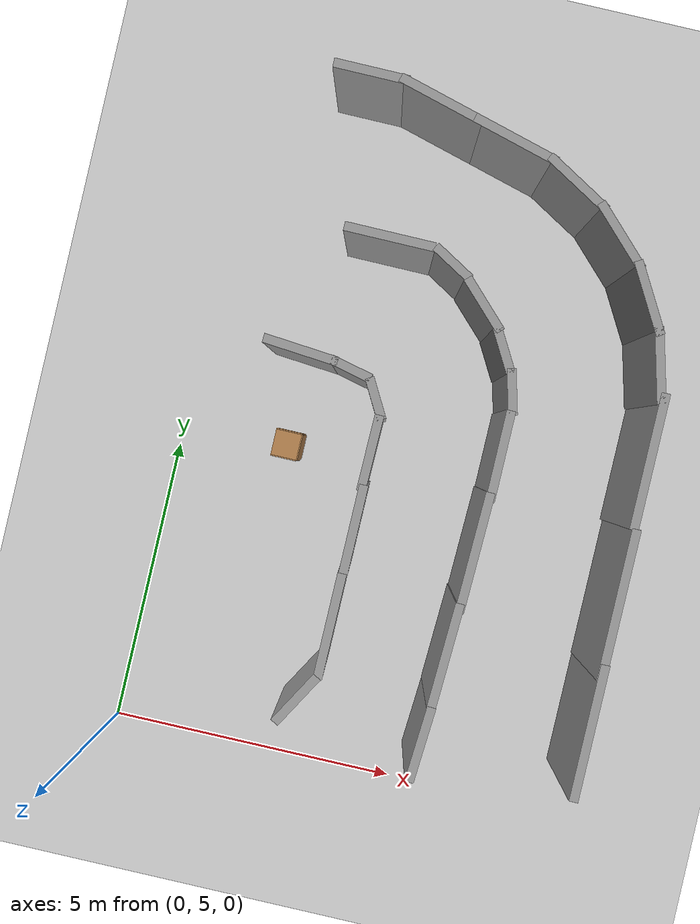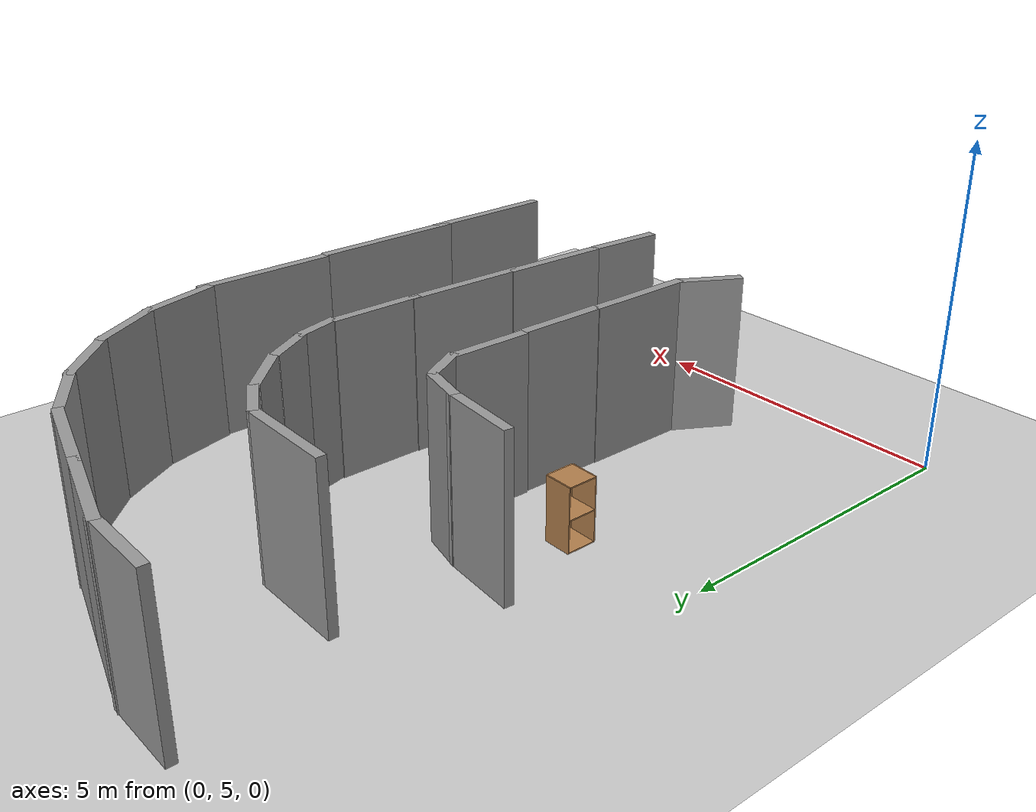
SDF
<sdf version="1.6">
 <world name="default">
  <model name="ground_plane">
   <static>1</static>
   <link name="link">
    <collision name="collision">
     <geometry><plane><normal>0 0 1</normal><size>100 100</size></plane></geometry>
     <surface><friction><ode><mu>100</mu><mu2>50</mu2></ode></friction></surface>
    </collision>
    <visual name="visual">
     <cast_shadows>0</cast_shadows>
     <geometry><plane><normal>0 0 1</normal><size>100 100</size></plane></geometry>
     <material>
      <script><uri>file://media/materials/scripts/gazebo.material</uri><name>Gazebo/Grey</name></script>
     </material>
    </visual>
   </link>
  </model>
  <model name="c-Snail_v3">
   <link name="Wall_19">
    <pose>0.800174 -5.81597 0 0 -0 0</pose>
    <visual name="Wall_19_Visual">
     <pose>0 0 1.25 0 -0 0</pose>
     <geometry><box><size>2.25 0.15 2.5</size></box></geometry>
     <material>
      <script><uri>file://media/materials/scripts/gazebo.material</uri><name>Gazebo/Grey</name></script>
      <ambient>1 1 1 1</ambient>
     </material>
     <meta><layer>0</layer></meta>
    </visual>
    <collision name="Wall_19_Collision">
     <pose>0 0 1.25 0 -0 0</pose>
     <geometry><box><size>2.25 0.15 2.5</size></box></geometry>
     <surface>
      <friction>
       <ode><mu>1</mu><mu2>1</mu2><fdir1>0 0 0</fdir1><slip1>0</slip1><slip2>0</slip2></ode>
       <torsional>
        <coefficient>1</coefficient>
        <patch_radius>0</patch_radius>
        <surface_radius>0</surface_radius>
        <use_patch_radius>1</use_patch_radius>
        <ode><slip>0</slip></ode>
       </torsional>
      </friction>
      <bounce><restitution_coefficient>0</restitution_coefficient><threshold>1e+06</threshold></bounce>
      <contact>
       <collide_without_contact>0</collide_without_contact>
       <collide_without_contact_bitmask>1</collide_without_contact_bitmask>
       <collide_bitmask>1</collide_bitmask>
       <ode>
        <soft_cfm>0</soft_cfm>
        <soft_erp>0.2</soft_erp>
        <kp>1e+13</kp>
        <kd>1</kd>
        <max_vel>0.01</max_vel>
        <min_depth>0</min_depth>
       </ode>
       <bullet>
        <split_impulse>1</split_impulse>
        <split_impulse_penetration_threshold>-0.01</split_impulse_penetration_threshold>
        <soft_cfm>0</soft_cfm>
        <soft_erp>0.2</soft_erp>
        <kp>1e+13</kp>
        <kd>1</kd>
       </bullet>
      </contact>
     </surface>
    </collision>
   </link>
   <link name="Wall_20">
    <pose>2.90214 -5.80096 0 0 -0 0</pose>
    <visual name="Wall_20_Visual">
     <pose>0 0 1.25 0 -0 0</pose>
     <geometry><box><size>2.5 0.15 2.5</size></box></geometry>
     <material>
      <script><uri>file://media/materials/scripts/gazebo.material</uri><name>Gazebo/Grey</name></script>
      <ambient>1 1 1 1</ambient>
     </material>
     <meta><layer>0</layer></meta>
    </visual>
    <collision name="Wall_20_Collision">
     <pose>0 0 1.25 0 -0 0</pose>
     <geometry><box><size>2.5 0.15 2.5</size></box></geometry>
     <surface>
      <friction>
       <ode><mu>1</mu><mu2>1</mu2><fdir1>0 0 0</fdir1><slip1>0</slip1><slip2>0</slip2></ode>
       <torsional>
        <coefficient>1</coefficient>
        <patch_radius>0</patch_radius>
        <surface_radius>0</surface_radius>
        <use_patch_radius>1</use_patch_radius>
        <ode><slip>0</slip></ode>
       </torsional>
      </friction>
      <bounce><restitution_coefficient>0</restitution_coefficient><threshold>1e+06</threshold></bounce>
      <contact>
       <collide_without_contact>0</collide_without_contact>
       <collide_without_contact_bitmask>1</collide_without_contact_bitmask>
       <collide_bitmask>1</collide_bitmask>
       <ode>
        <soft_cfm>0</soft_cfm>
        <soft_erp>0.2</soft_erp>
        <kp>1e+13</kp>
        <kd>1</kd>
        <max_vel>0.01</max_vel>
        <min_depth>0</min_depth>
       </ode>
       <bullet>
        <split_impulse>1</split_impulse>
        <split_impulse_penetration_threshold>-0.01</split_impulse_penetration_threshold>
        <soft_cfm>0</soft_cfm>
        <soft_erp>0.2</soft_erp>
        <kp>1e+13</kp>
        <kd>1</kd>
       </bullet>
      </contact>
     </surface>
    </collision>
   </link>
   <link name="Wall_21">
    <pose>5.25228 -5.75509 0 0 -0 0</pose>
    <visual name="Wall_21_Visual">
     <pose>0 0 1.25 0 -0 0</pose>
     <geometry><box><size>2.25 0.15 2.5</size></box></geometry>
     <material>
      <script><uri>file://media/materials/scripts/gazebo.material</uri><name>Gazebo/Grey</name></script>
      <ambient>1 1 1 1</ambient>
     </material>
     <meta><layer>0</layer></meta>
    </visual>
    <collision name="Wall_21_Collision">
     <pose>0 0 1.25 0 -0 0</pose>
     <geometry><box><size>2.25 0.15 2.5</size></box></geometry>
     <surface>
      <friction>
       <ode><mu>1</mu><mu2>1</mu2><fdir1>0 0 0</fdir1><slip1>0</slip1><slip2>0</slip2></ode>
       <torsional>
        <coefficient>1</coefficient>
        <patch_radius>0</patch_radius>
        <surface_radius>0</surface_radius>
        <use_patch_radius>1</use_patch_radius>
        <ode><slip>0</slip></ode>
       </torsional>
      </friction>
      <bounce><restitution_coefficient>0</restitution_coefficient><threshold>1e+06</threshold></bounce>
      <contact>
       <collide_without_contact>0</collide_without_contact>
       <collide_without_contact_bitmask>1</collide_without_contact_bitmask>
       <collide_bitmask>1</collide_bitmask>
       <ode>
        <soft_cfm>0</soft_cfm>
        <soft_erp>0.2</soft_erp>
        <kp>1e+13</kp>
        <kd>1</kd>
        <max_vel>0.01</max_vel>
        <min_depth>0</min_depth>
       </ode>
       <bullet>
        <split_impulse>1</split_impulse>
        <split_impulse_penetration_threshold>-0.01</split_impulse_penetration_threshold>
        <soft_cfm>0</soft_cfm>
        <soft_erp>0.2</soft_erp>
        <kp>1e+13</kp>
        <kd>1</kd>
       </bullet>
      </contact>
     </surface>
    </collision>
   </link>
   <link name="Wall_22">
    <pose>6.78859 -5.56286 0 0 -0 0.261799</pose>
    <visual name="Wall_22_Visual">
     <pose>0 0 1.25 0 -0 0</pose>
     <geometry><box><size>1.25 0.15 2.5</size></box></geometry>
     <material>
      <script><uri>file://media/materials/scripts/gazebo.material</uri><name>Gazebo/Grey</name></script>
      <ambient>1 1 1 1</ambient>
     </material>
     <meta><layer>0</layer></meta>
    </visual>
    <collision name="Wall_22_Collision">
     <pose>0 0 1.25 0 -0 0</pose>
     <geometry><box><size>1.25 0.15 2.5</size></box></geometry>
     <surface>
      <friction>
       <ode><mu>1</mu><mu2>1</mu2><fdir1>0 0 0</fdir1><slip1>0</slip1><slip2>0</slip2></ode>
       <torsional>
        <coefficient>1</coefficient>
        <patch_radius>0</patch_radius>
        <surface_radius>0</surface_radius>
        <use_patch_radius>1</use_patch_radius>
        <ode><slip>0</slip></ode>
       </torsional>
      </friction>
      <bounce><restitution_coefficient>0</restitution_coefficient><threshold>1e+06</threshold></bounce>
      <contact>
       <collide_without_contact>0</collide_without_contact>
       <collide_without_contact_bitmask>1</collide_without_contact_bitmask>
       <collide_bitmask>1</collide_bitmask>
       <ode>
        <soft_cfm>0</soft_cfm>
        <soft_erp>0.2</soft_erp>
        <kp>1e+13</kp>
        <kd>1</kd>
        <max_vel>0.01</max_vel>
        <min_depth>0</min_depth>
       </ode>
       <bullet>
        <split_impulse>1</split_impulse>
        <split_impulse_penetration_threshold>-0.01</split_impulse_penetration_threshold>
        <soft_cfm>0</soft_cfm>
        <soft_erp>0.2</soft_erp>
        <kp>1e+13</kp>
        <kd>1</kd>
       </bullet>
      </contact>
     </surface>
    </collision>
   </link>
   <link name="Wall_23">
    <pose>7.79617 -5.14551 0 0 -0 0.523599</pose>
    <visual name="Wall_23_Visual">
     <pose>0 0 1.25 0 -0 0</pose>
     <geometry><box><size>1.25 0.15 2.5</size></box></geometry>
     <material>
      <script><uri>file://media/materials/scripts/gazebo.material</uri><name>Gazebo/Grey</name></script>
      <ambient>1 1 1 1</ambient>
     </material>
     <meta><layer>0</layer></meta>
    </visual>
    <collision name="Wall_23_Collision">
     <pose>0 0 1.25 0 -0 0</pose>
     <geometry><box><size>1.25 0.15 2.5</size></box></geometry>
     <surface>
      <friction>
       <ode><mu>1</mu><mu2>1</mu2><fdir1>0 0 0</fdir1><slip1>0</slip1><slip2>0</slip2></ode>
       <torsional>
        <coefficient>1</coefficient>
        <patch_radius>0</patch_radius>
        <surface_radius>0</surface_radius>
        <use_patch_radius>1</use_patch_radius>
        <ode><slip>0</slip></ode>
       </torsional>
      </friction>
      <bounce><restitution_coefficient>0</restitution_coefficient><threshold>1e+06</threshold></bounce>
      <contact>
       <collide_without_contact>0</collide_without_contact>
       <collide_without_contact_bitmask>1</collide_without_contact_bitmask>
       <collide_bitmask>1</collide_bitmask>
       <ode>
        <soft_cfm>0</soft_cfm>
        <soft_erp>0.2</soft_erp>
        <kp>1e+13</kp>
        <kd>1</kd>
        <max_vel>0.01</max_vel>
        <min_depth>0</min_depth>
       </ode>
       <bullet>
        <split_impulse>1</split_impulse>
        <split_impulse_penetration_threshold>-0.01</split_impulse_penetration_threshold>
        <soft_cfm>0</soft_cfm>
        <soft_erp>0.2</soft_erp>
        <kp>1e+13</kp>
        <kd>1</kd>
       </bullet>
      </contact>
     </surface>
    </collision>
   </link>
   <link name="Wall_24">
    <pose>8.66139 -4.4816 0 0 -0 0.785398</pose>
    <visual name="Wall_24_Visual">
     <pose>0 0 1.25 0 -0 0</pose>
     <geometry><box><size>1.25 0.15 2.5</size></box></geometry>
     <material>
      <script><uri>file://media/materials/scripts/gazebo.material</uri><name>Gazebo/Grey</name></script>
      <ambient>1 1 1 1</ambient>
     </material>
     <meta><layer>0</layer></meta>
    </visual>
    <collision name="Wall_24_Collision">
     <pose>0 0 1.25 0 -0 0</pose>
     <geometry><box><size>1.25 0.15 2.5</size></box></geometry>
     <surface>
      <friction>
       <ode><mu>1</mu><mu2>1</mu2><fdir1>0 0 0</fdir1><slip1>0</slip1><slip2>0</slip2></ode>
       <torsional>
        <coefficient>1</coefficient>
        <patch_radius>0</patch_radius>
        <surface_radius>0</surface_radius>
        <use_patch_radius>1</use_patch_radius>
        <ode><slip>0</slip></ode>
       </torsional>
      </friction>
      <bounce><restitution_coefficient>0</restitution_coefficient><threshold>1e+06</threshold></bounce>
      <contact>
       <collide_without_contact>0</collide_without_contact>
       <collide_without_contact_bitmask>1</collide_without_contact_bitmask>
       <collide_bitmask>1</collide_bitmask>
       <ode>
        <soft_cfm>0</soft_cfm>
        <soft_erp>0.2</soft_erp>
        <kp>1e+13</kp>
        <kd>1</kd>
        <max_vel>0.01</max_vel>
        <min_depth>0</min_depth>
       </ode>
       <bullet>
        <split_impulse>1</split_impulse>
        <split_impulse_penetration_threshold>-0.01</split_impulse_penetration_threshold>
        <soft_cfm>0</soft_cfm>
        <soft_erp>0.2</soft_erp>
        <kp>1e+13</kp>
        <kd>1</kd>
       </bullet>
      </contact>
     </surface>
    </collision>
   </link>
   <link name="Wall_25">
    <pose>9.3253 -3.61638 0 0 -0 1.0472</pose>
    <visual name="Wall_25_Visual">
     <pose>0 0 1.25 0 -0 0</pose>
     <geometry><box><size>1.25 0.15 2.5</size></box></geometry>
     <material>
      <script><uri>file://media/materials/scripts/gazebo.material</uri><name>Gazebo/Grey</name></script>
      <ambient>1 1 1 1</ambient>
     </material>
     <meta><layer>0</layer></meta>
    </visual>
    <collision name="Wall_25_Collision">
     <pose>0 0 1.25 0 -0 0</pose>
     <geometry><box><size>1.25 0.15 2.5</size></box></geometry>
     <surface>
      <friction>
       <ode><mu>1</mu><mu2>1</mu2><fdir1>0 0 0</fdir1><slip1>0</slip1><slip2>0</slip2></ode>
       <torsional>
        <coefficient>1</coefficient>
        <patch_radius>0</patch_radius>
        <surface_radius>0</surface_radius>
        <use_patch_radius>1</use_patch_radius>
        <ode><slip>0</slip></ode>
       </torsional>
      </friction>
      <bounce><restitution_coefficient>0</restitution_coefficient><threshold>1e+06</threshold></bounce>
      <contact>
       <collide_without_contact>0</collide_without_contact>
       <collide_without_contact_bitmask>1</collide_without_contact_bitmask>
       <collide_bitmask>1</collide_bitmask>
       <ode>
        <soft_cfm>0</soft_cfm>
        <soft_erp>0.2</soft_erp>
        <kp>1e+13</kp>
        <kd>1</kd>
        <max_vel>0.01</max_vel>
        <min_depth>0</min_depth>
       </ode>
       <bullet>
        <split_impulse>1</split_impulse>
        <split_impulse_penetration_threshold>-0.01</split_impulse_penetration_threshold>
        <soft_cfm>0</soft_cfm>
        <soft_erp>0.2</soft_erp>
        <kp>1e+13</kp>
        <kd>1</kd>
       </bullet>
      </contact>
     </surface>
    </collision>
   </link>
   <link name="Wall_26">
    <pose>9.775 -2.48806 0 0 -0 1.309</pose>
    <visual name="Wall_26_Visual">
     <pose>0 0 1.25 0 -0 0</pose>
     <geometry><box><size>1.5 0.15 2.5</size></box></geometry>
     <material>
      <script><uri>file://media/materials/scripts/gazebo.material</uri><name>Gazebo/Grey</name></script>
      <ambient>1 1 1 1</ambient>
     </material>
     <meta><layer>0</layer></meta>
    </visual>
    <collision name="Wall_26_Collision">
     <pose>0 0 1.25 0 -0 0</pose>
     <geometry><box><size>1.5 0.15 2.5</size></box></geometry>
     <surface>
      <friction>
       <ode><mu>1</mu><mu2>1</mu2><fdir1>0 0 0</fdir1><slip1>0</slip1><slip2>0</slip2></ode>
       <torsional>
        <coefficient>1</coefficient>
        <patch_radius>0</patch_radius>
        <surface_radius>0</surface_radius>
        <use_patch_radius>1</use_patch_radius>
        <ode><slip>0</slip></ode>
       </torsional>
      </friction>
      <bounce><restitution_coefficient>0</restitution_coefficient><threshold>1e+06</threshold></bounce>
      <contact>
       <collide_without_contact>0</collide_without_contact>
       <collide_without_contact_bitmask>1</collide_without_contact_bitmask>
       <collide_bitmask>1</collide_bitmask>
       <ode>
        <soft_cfm>0</soft_cfm>
        <soft_erp>0.2</soft_erp>
        <kp>1e+13</kp>
        <kd>1</kd>
        <max_vel>0.01</max_vel>
        <min_depth>0</min_depth>
       </ode>
       <bullet>
        <split_impulse>1</split_impulse>
        <split_impulse_penetration_threshold>-0.01</split_impulse_penetration_threshold>
        <soft_cfm>0</soft_cfm>
        <soft_erp>0.2</soft_erp>
        <kp>1e+13</kp>
        <kd>1</kd>
       </bullet>
      </contact>
     </surface>
    </collision>
   </link>
   <link name="Wall_27">
    <pose>10.1244 -1.18406 0 0 -0 1.309</pose>
    <visual name="Wall_27_Visual">
     <pose>0 0 1.25 0 -0 0</pose>
     <geometry><box><size>1.5 0.15 2.5</size></box></geometry>
     <material>
      <script><uri>file://media/materials/scripts/gazebo.material</uri><name>Gazebo/Grey</name></script>
      <ambient>1 1 1 1</ambient>
     </material>
     <meta><layer>0</layer></meta>
    </visual>
    <collision name="Wall_27_Collision">
     <pose>0 0 1.25 0 -0 0</pose>
     <geometry><box><size>1.5 0.15 2.5</size></box></geometry>
     <surface>
      <friction>
       <ode><mu>1</mu><mu2>1</mu2><fdir1>0 0 0</fdir1><slip1>0</slip1><slip2>0</slip2></ode>
       <torsional>
        <coefficient>1</coefficient>
        <patch_radius>0</patch_radius>
        <surface_radius>0</surface_radius>
        <use_patch_radius>1</use_patch_radius>
        <ode><slip>0</slip></ode>
       </torsional>
      </friction>
      <bounce><restitution_coefficient>0</restitution_coefficient><threshold>1e+06</threshold></bounce>
      <contact>
       <collide_without_contact>0</collide_without_contact>
       <collide_without_contact_bitmask>1</collide_without_contact_bitmask>
       <collide_bitmask>1</collide_bitmask>
       <ode>
        <soft_cfm>0</soft_cfm>
        <soft_erp>0.2</soft_erp>
        <kp>1e+13</kp>
        <kd>1</kd>
        <max_vel>0.01</max_vel>
        <min_depth>0</min_depth>
       </ode>
       <bullet>
        <split_impulse>1</split_impulse>
        <split_impulse_penetration_threshold>-0.01</split_impulse_penetration_threshold>
        <soft_cfm>0</soft_cfm>
        <soft_erp>0.2</soft_erp>
        <kp>1e+13</kp>
        <kd>1</kd>
       </bullet>
      </contact>
     </surface>
    </collision>
   </link>
   <link name="Wall_28">
    <pose>10.2991 0.017937 0 0 -0 1.5708</pose>
    <visual name="Wall_28_Visual">
     <pose>0 0 1.25 0 -0 0</pose>
     <geometry><box><size>1.25 0.15 2.5</size></box></geometry>
     <material>
      <script><uri>file://media/materials/scripts/gazebo.material</uri><name>Gazebo/Grey</name></script>
      <ambient>1 1 1 1</ambient>
     </material>
     <meta><layer>0</layer></meta>
    </visual>
    <collision name="Wall_28_Collision">
     <pose>0 0 1.25 0 -0 0</pose>
     <geometry><box><size>1.25 0.15 2.5</size></box></geometry>
     <surface>
      <friction>
       <ode><mu>1</mu><mu2>1</mu2><fdir1>0 0 0</fdir1><slip1>0</slip1><slip2>0</slip2></ode>
       <torsional>
        <coefficient>1</coefficient>
        <patch_radius>0</patch_radius>
        <surface_radius>0</surface_radius>
        <use_patch_radius>1</use_patch_radius>
        <ode><slip>0</slip></ode>
       </torsional>
      </friction>
      <bounce><restitution_coefficient>0</restitution_coefficient><threshold>1e+06</threshold></bounce>
      <contact>
       <collide_without_contact>0</collide_without_contact>
       <collide_without_contact_bitmask>1</collide_without_contact_bitmask>
       <collide_bitmask>1</collide_bitmask>
       <ode>
        <soft_cfm>0</soft_cfm>
        <soft_erp>0.2</soft_erp>
        <kp>1e+13</kp>
        <kd>1</kd>
        <max_vel>0.01</max_vel>
        <min_depth>0</min_depth>
       </ode>
       <bullet>
        <split_impulse>1</split_impulse>
        <split_impulse_penetration_threshold>-0.01</split_impulse_penetration_threshold>
        <soft_cfm>0</soft_cfm>
        <soft_erp>0.2</soft_erp>
        <kp>1e+13</kp>
        <kd>1</kd>
       </bullet>
      </contact>
     </surface>
    </collision>
   </link>
   <link name="Wall_46">
    <pose>0.001242 -3.22352 -0 0 0 -0.065231</pose>
    <visual name="Wall_46_Visual">
     <pose>0 0 1.25 0 -0 0</pose>
     <geometry><box><size>1.25 0.15 2.5</size></box></geometry>
     <material>
      <script><uri>file://media/materials/scripts/gazebo.material</uri><name>Gazebo/Grey</name></script>
      <ambient>1 1 1 1</ambient>
     </material>
     <meta><layer>0</layer></meta>
    </visual>
    <collision name="Wall_46_Collision">
     <pose>0 0 1.25 0 -0 0</pose>
     <geometry><box><size>1.25 0.15 2.5</size></box></geometry>
     <surface>
      <friction>
       <ode><mu>1</mu><mu2>1</mu2><fdir1>0 0 0</fdir1><slip1>0</slip1><slip2>0</slip2></ode>
       <torsional>
        <coefficient>1</coefficient>
        <patch_radius>0</patch_radius>
        <surface_radius>0</surface_radius>
        <use_patch_radius>1</use_patch_radius>
        <ode><slip>0</slip></ode>
       </torsional>
      </friction>
      <bounce><restitution_coefficient>0</restitution_coefficient><threshold>1e+06</threshold></bounce>
      <contact>
       <collide_without_contact>0</collide_without_contact>
       <collide_without_contact_bitmask>1</collide_without_contact_bitmask>
       <collide_bitmask>1</collide_bitmask>
       <ode>
        <soft_cfm>0</soft_cfm>
        <soft_erp>0.2</soft_erp>
        <kp>1e+13</kp>
        <kd>1</kd>
        <max_vel>0.01</max_vel>
        <min_depth>0</min_depth>
       </ode>
       <bullet>
        <split_impulse>1</split_impulse>
        <split_impulse_penetration_threshold>-0.01</split_impulse_penetration_threshold>
        <soft_cfm>0</soft_cfm>
        <soft_erp>0.2</soft_erp>
        <kp>1e+13</kp>
        <kd>1</kd>
       </bullet>
      </contact>
     </surface>
    </collision>
   </link>
   <link name="Wall_47">
    <pose>1.4692 -3.29142 0 0 0 -0.040966</pose>
    <visual name="Wall_47_Visual">
     <pose>0 0 1.25 0 -0 0</pose>
     <geometry><box><size>1.75 0.15 2.5</size></box></geometry>
     <material>
      <script><uri>file://media/materials/scripts/gazebo.material</uri><name>Gazebo/Grey</name></script>
      <ambient>1 1 1 1</ambient>
     </material>
     <meta><layer>0</layer></meta>
    </visual>
    <collision name="Wall_47_Collision">
     <pose>0 0 1.25 0 -0 0</pose>
     <geometry><box><size>1.75 0.15 2.5</size></box></geometry>
     <surface>
      <friction>
       <ode><mu>1</mu><mu2>1</mu2><fdir1>0 0 0</fdir1><slip1>0</slip1><slip2>0</slip2></ode>
       <torsional>
        <coefficient>1</coefficient>
        <patch_radius>0</patch_radius>
        <surface_radius>0</surface_radius>
        <use_patch_radius>1</use_patch_radius>
        <ode><slip>0</slip></ode>
       </torsional>
      </friction>
      <bounce><restitution_coefficient>0</restitution_coefficient><threshold>1e+06</threshold></bounce>
      <contact>
       <collide_without_contact>0</collide_without_contact>
       <collide_without_contact_bitmask>1</collide_without_contact_bitmask>
       <collide_bitmask>1</collide_bitmask>
       <ode>
        <soft_cfm>0</soft_cfm>
        <soft_erp>0.2</soft_erp>
        <kp>1e+13</kp>
        <kd>1</kd>
        <max_vel>0.01</max_vel>
        <min_depth>0</min_depth>
       </ode>
       <bullet>
        <split_impulse>1</split_impulse>
        <split_impulse_penetration_threshold>-0.01</split_impulse_penetration_threshold>
        <soft_cfm>0</soft_cfm>
        <soft_erp>0.2</soft_erp>
        <kp>1e+13</kp>
        <kd>1</kd>
       </bullet>
      </contact>
     </surface>
    </collision>
   </link>
   <link name="Wall_48">
    <pose>3.18497 -3.36606 0 0 0 -0.02609</pose>
    <visual name="Wall_48_Visual">
     <pose>0 0 1.25 0 -0 0</pose>
     <geometry><box><size>2 0.15 2.5</size></box></geometry>
     <material>
      <script><uri>file://media/materials/scripts/gazebo.material</uri><name>Gazebo/Grey</name></script>
      <ambient>1 1 1 1</ambient>
     </material>
     <meta><layer>0</layer></meta>
    </visual>
    <collision name="Wall_48_Collision">
     <pose>0 0 1.25 0 -0 0</pose>
     <geometry><box><size>2 0.15 2.5</size></box></geometry>
     <surface>
      <friction>
       <ode><mu>1</mu><mu2>1</mu2><fdir1>0 0 0</fdir1><slip1>0</slip1><slip2>0</slip2></ode>
       <torsional>
        <coefficient>1</coefficient>
        <patch_radius>0</patch_radius>
        <surface_radius>0</surface_radius>
        <use_patch_radius>1</use_patch_radius>
        <ode><slip>0</slip></ode>
       </torsional>
      </friction>
      <bounce><restitution_coefficient>0</restitution_coefficient><threshold>1e+06</threshold></bounce>
      <contact>
       <collide_without_contact>0</collide_without_contact>
       <collide_without_contact_bitmask>1</collide_without_contact_bitmask>
       <collide_bitmask>1</collide_bitmask>
       <ode>
        <soft_cfm>0</soft_cfm>
        <soft_erp>0.2</soft_erp>
        <kp>1e+13</kp>
        <kd>1</kd>
        <max_vel>0.01</max_vel>
        <min_depth>0</min_depth>
       </ode>
       <bullet>
        <split_impulse>1</split_impulse>
        <split_impulse_penetration_threshold>-0.01</split_impulse_penetration_threshold>
        <soft_cfm>0</soft_cfm>
        <soft_erp>0.2</soft_erp>
        <kp>1e+13</kp>
        <kd>1</kd>
       </bullet>
      </contact>
     </surface>
    </collision>
   </link>
   <link name="Wall_49">
    <pose>4.78497 -3.4097 0 0 -0 0</pose>
    <visual name="Wall_49_Visual">
     <pose>0 0 1.25 0 -0 0</pose>
     <geometry><box><size>1.5 0.15 2.5</size></box></geometry>
     <material>
      <script><uri>file://media/materials/scripts/gazebo.material</uri><name>Gazebo/Grey</name></script>
      <ambient>1 1 1 1</ambient>
     </material>
     <meta><layer>0</layer></meta>
    </visual>
    <collision name="Wall_49_Collision">
     <pose>0 0 1.25 0 -0 0</pose>
     <geometry><box><size>1.5 0.15 2.5</size></box></geometry>
     <surface>
      <friction>
       <ode><mu>1</mu><mu2>1</mu2><fdir1>0 0 0</fdir1><slip1>0</slip1><slip2>0</slip2></ode>
       <torsional>
        <coefficient>1</coefficient>
        <patch_radius>0</patch_radius>
        <surface_radius>0</surface_radius>
        <use_patch_radius>1</use_patch_radius>
        <ode><slip>0</slip></ode>
       </torsional>
      </friction>
      <bounce><restitution_coefficient>0</restitution_coefficient><threshold>1e+06</threshold></bounce>
      <contact>
       <collide_without_contact>0</collide_without_contact>
       <collide_without_contact_bitmask>1</collide_without_contact_bitmask>
       <collide_bitmask>1</collide_bitmask>
       <ode>
        <soft_cfm>0</soft_cfm>
        <soft_erp>0.2</soft_erp>
        <kp>1e+13</kp>
        <kd>1</kd>
        <max_vel>0.01</max_vel>
        <min_depth>0</min_depth>
       </ode>
       <bullet>
        <split_impulse>1</split_impulse>
        <split_impulse_penetration_threshold>-0.01</split_impulse_penetration_threshold>
        <soft_cfm>0</soft_cfm>
        <soft_erp>0.2</soft_erp>
        <kp>1e+13</kp>
        <kd>1</kd>
       </bullet>
      </contact>
     </surface>
    </collision>
   </link>
   <link name="Wall_50">
    <pose>5.83118 -3.35199 0 0 -0 0.261799</pose>
    <visual name="Wall_50_Visual">
     <pose>0 0 1.25 0 -0 0</pose>
     <geometry><box><size>0.75 0.15 2.5</size></box></geometry>
     <material>
      <script><uri>file://media/materials/scripts/gazebo.material</uri><name>Gazebo/Grey</name></script>
      <ambient>1 1 1 1</ambient>
     </material>
     <meta><layer>0</layer></meta>
    </visual>
    <collision name="Wall_50_Collision">
     <pose>0 0 1.25 0 -0 0</pose>
     <geometry><box><size>0.75 0.15 2.5</size></box></geometry>
     <surface>
      <friction>
       <ode><mu>1</mu><mu2>1</mu2><fdir1>0 0 0</fdir1><slip1>0</slip1><slip2>0</slip2></ode>
       <torsional>
        <coefficient>1</coefficient>
        <patch_radius>0</patch_radius>
        <surface_radius>0</surface_radius>
        <use_patch_radius>1</use_patch_radius>
        <ode><slip>0</slip></ode>
       </torsional>
      </friction>
      <bounce><restitution_coefficient>0</restitution_coefficient><threshold>1e+06</threshold></bounce>
      <contact>
       <collide_without_contact>0</collide_without_contact>
       <collide_without_contact_bitmask>1</collide_without_contact_bitmask>
       <collide_bitmask>1</collide_bitmask>
       <ode>
        <soft_cfm>0</soft_cfm>
        <soft_erp>0.2</soft_erp>
        <kp>1e+13</kp>
        <kd>1</kd>
        <max_vel>0.01</max_vel>
        <min_depth>0</min_depth>
       </ode>
       <bullet>
        <split_impulse>1</split_impulse>
        <split_impulse_penetration_threshold>-0.01</split_impulse_penetration_threshold>
        <soft_cfm>0</soft_cfm>
        <soft_erp>0.2</soft_erp>
        <kp>1e+13</kp>
        <kd>1</kd>
       </bullet>
      </contact>
     </surface>
    </collision>
   </link>
   <link name="Wall_51">
    <pose>6.44534 -3.07335 0 0 -0 0.523599</pose>
    <visual name="Wall_51_Visual">
     <pose>0 0 1.25 0 -0 0</pose>
     <geometry><box><size>0.75 0.15 2.5</size></box></geometry>
     <material>
      <script><uri>file://media/materials/scripts/gazebo.material</uri><name>Gazebo/Grey</name></script>
      <ambient>1 1 1 1</ambient>
     </material>
     <meta><layer>0</layer></meta>
    </visual>
    <collision name="Wall_51_Collision">
     <pose>0 0 1.25 0 -0 0</pose>
     <geometry><box><size>0.75 0.15 2.5</size></box></geometry>
     <surface>
      <friction>
       <ode><mu>1</mu><mu2>1</mu2><fdir1>0 0 0</fdir1><slip1>0</slip1><slip2>0</slip2></ode>
       <torsional>
        <coefficient>1</coefficient>
        <patch_radius>0</patch_radius>
        <surface_radius>0</surface_radius>
        <use_patch_radius>1</use_patch_radius>
        <ode><slip>0</slip></ode>
       </torsional>
      </friction>
      <bounce><restitution_coefficient>0</restitution_coefficient><threshold>1e+06</threshold></bounce>
      <contact>
       <collide_without_contact>0</collide_without_contact>
       <collide_without_contact_bitmask>1</collide_without_contact_bitmask>
       <collide_bitmask>1</collide_bitmask>
       <ode>
        <soft_cfm>0</soft_cfm>
        <soft_erp>0.2</soft_erp>
        <kp>1e+13</kp>
        <kd>1</kd>
        <max_vel>0.01</max_vel>
        <min_depth>0</min_depth>
       </ode>
       <bullet>
        <split_impulse>1</split_impulse>
        <split_impulse_penetration_threshold>-0.01</split_impulse_penetration_threshold>
        <soft_cfm>0</soft_cfm>
        <soft_erp>0.2</soft_erp>
        <kp>1e+13</kp>
        <kd>1</kd>
       </bullet>
      </contact>
     </surface>
    </collision>
   </link>
   <link name="Wall_52">
    <pose>7.08455 -2.59483 0 0 -0 0.785398</pose>
    <visual name="Wall_52_Visual">
     <pose>0 0 1.25 0 -0 0</pose>
     <geometry><box><size>1 0.15 2.5</size></box></geometry>
     <material>
      <script><uri>file://media/materials/scripts/gazebo.material</uri><name>Gazebo/Grey</name></script>
      <ambient>1 1 1 1</ambient>
     </material>
     <meta><layer>0</layer></meta>
    </visual>
    <collision name="Wall_52_Collision">
     <pose>0 0 1.25 0 -0 0</pose>
     <geometry><box><size>1 0.15 2.5</size></box></geometry>
     <surface>
      <friction>
       <ode><mu>1</mu><mu2>1</mu2><fdir1>0 0 0</fdir1><slip1>0</slip1><slip2>0</slip2></ode>
       <torsional>
        <coefficient>1</coefficient>
        <patch_radius>0</patch_radius>
        <surface_radius>0</surface_radius>
        <use_patch_radius>1</use_patch_radius>
        <ode><slip>0</slip></ode>
       </torsional>
      </friction>
      <bounce><restitution_coefficient>0</restitution_coefficient><threshold>1e+06</threshold></bounce>
      <contact>
       <collide_without_contact>0</collide_without_contact>
       <collide_without_contact_bitmask>1</collide_without_contact_bitmask>
       <collide_bitmask>1</collide_bitmask>
       <ode>
        <soft_cfm>0</soft_cfm>
        <soft_erp>0.2</soft_erp>
        <kp>1e+13</kp>
        <kd>1</kd>
        <max_vel>0.01</max_vel>
        <min_depth>0</min_depth>
       </ode>
       <bullet>
        <split_impulse>1</split_impulse>
        <split_impulse_penetration_threshold>-0.01</split_impulse_penetration_threshold>
        <soft_cfm>0</soft_cfm>
        <soft_erp>0.2</soft_erp>
        <kp>1e+13</kp>
        <kd>1</kd>
       </bullet>
      </contact>
     </surface>
    </collision>
   </link>
   <link name="Wall_53">
    <pose>7.62419 -1.95298 0 0 -0 1.0472</pose>
    <visual name="Wall_53_Visual">
     <pose>0 0 1.25 0 -0 0</pose>
     <geometry><box><size>0.75 0.15 2.5</size></box></geometry>
     <material>
      <script><uri>file://media/materials/scripts/gazebo.material</uri><name>Gazebo/Grey</name></script>
      <ambient>1 1 1 1</ambient>
     </material>
     <meta><layer>0</layer></meta>
    </visual>
    <collision name="Wall_53_Collision">
     <pose>0 0 1.25 0 -0 0</pose>
     <geometry><box><size>0.75 0.15 2.5</size></box></geometry>
     <surface>
      <friction>
       <ode><mu>1</mu><mu2>1</mu2><fdir1>0 0 0</fdir1><slip1>0</slip1><slip2>0</slip2></ode>
       <torsional>
        <coefficient>1</coefficient>
        <patch_radius>0</patch_radius>
        <surface_radius>0</surface_radius>
        <use_patch_radius>1</use_patch_radius>
        <ode><slip>0</slip></ode>
       </torsional>
      </friction>
      <bounce><restitution_coefficient>0</restitution_coefficient><threshold>1e+06</threshold></bounce>
      <contact>
       <collide_without_contact>0</collide_without_contact>
       <collide_without_contact_bitmask>1</collide_without_contact_bitmask>
       <collide_bitmask>1</collide_bitmask>
       <ode>
        <soft_cfm>0</soft_cfm>
        <soft_erp>0.2</soft_erp>
        <kp>1e+13</kp>
        <kd>1</kd>
        <max_vel>0.01</max_vel>
        <min_depth>0</min_depth>
       </ode>
       <bullet>
        <split_impulse>1</split_impulse>
        <split_impulse_penetration_threshold>-0.01</split_impulse_penetration_threshold>
        <soft_cfm>0</soft_cfm>
        <soft_erp>0.2</soft_erp>
        <kp>1e+13</kp>
        <kd>1</kd>
       </bullet>
      </contact>
     </surface>
    </collision>
   </link>
   <link name="Wall_54">
    <pose>7.79615 -0.874793 0 0 -0 1.5708</pose>
    <visual name="Wall_54_Visual">
     <pose>0 0 1.25 0 -0 0</pose>
     <geometry><box><size>1.5 0.15 2.5</size></box></geometry>
     <material>
      <script><uri>file://media/materials/scripts/gazebo.material</uri><name>Gazebo/Grey</name></script>
      <ambient>1 1 1 1</ambient>
     </material>
     <meta><layer>0</layer></meta>
    </visual>
    <collision name="Wall_54_Collision">
     <pose>0 0 1.25 0 -0 0</pose>
     <geometry><box><size>1.5 0.15 2.5</size></box></geometry>
     <surface>
      <friction>
       <ode><mu>1</mu><mu2>1</mu2><fdir1>0 0 0</fdir1><slip1>0</slip1><slip2>0</slip2></ode>
       <torsional>
        <coefficient>1</coefficient>
        <patch_radius>0</patch_radius>
        <surface_radius>0</surface_radius>
        <use_patch_radius>1</use_patch_radius>
        <ode><slip>0</slip></ode>
       </torsional>
      </friction>
      <bounce><restitution_coefficient>0</restitution_coefficient><threshold>1e+06</threshold></bounce>
      <contact>
       <collide_without_contact>0</collide_without_contact>
       <collide_without_contact_bitmask>1</collide_without_contact_bitmask>
       <collide_bitmask>1</collide_bitmask>
       <ode>
        <soft_cfm>0</soft_cfm>
        <soft_erp>0.2</soft_erp>
        <kp>1e+13</kp>
        <kd>1</kd>
        <max_vel>0.01</max_vel>
        <min_depth>0</min_depth>
       </ode>
       <bullet>
        <split_impulse>1</split_impulse>
        <split_impulse_penetration_threshold>-0.01</split_impulse_penetration_threshold>
        <soft_cfm>0</soft_cfm>
        <soft_erp>0.2</soft_erp>
        <kp>1e+13</kp>
        <kd>1</kd>
       </bullet>
      </contact>
     </surface>
    </collision>
   </link>
   <link name="Wall_69">
    <pose>0.240975 -1.11854 0 0 0 -0.523599</pose>
    <visual name="Wall_69_Visual">
     <pose>0 0 1.25 0 -0 0</pose>
     <geometry><box><size>1 0.15 2.5</size></box></geometry>
     <material>
      <script><uri>file://media/materials/scripts/gazebo.material</uri><name>Gazebo/Grey</name></script>
      <ambient>1 1 1 1</ambient>
     </material>
     <meta><layer>0</layer></meta>
    </visual>
    <collision name="Wall_69_Collision">
     <pose>0 0 1.25 0 -0 0</pose>
     <geometry><box><size>1 0.15 2.5</size></box></geometry>
     <surface>
      <friction>
       <ode><mu>1</mu><mu2>1</mu2><fdir1>0 0 0</fdir1><slip1>0</slip1><slip2>0</slip2></ode>
       <torsional>
        <coefficient>1</coefficient>
        <patch_radius>0</patch_radius>
        <surface_radius>0</surface_radius>
        <use_patch_radius>1</use_patch_radius>
        <ode><slip>0</slip></ode>
       </torsional>
      </friction>
      <bounce><restitution_coefficient>0</restitution_coefficient><threshold>1e+06</threshold></bounce>
      <contact>
       <collide_without_contact>0</collide_without_contact>
       <collide_without_contact_bitmask>1</collide_without_contact_bitmask>
       <collide_bitmask>1</collide_bitmask>
       <ode>
        <soft_cfm>0</soft_cfm>
        <soft_erp>0.2</soft_erp>
        <kp>1e+13</kp>
        <kd>1</kd>
        <max_vel>0.01</max_vel>
        <min_depth>0</min_depth>
       </ode>
       <bullet>
        <split_impulse>1</split_impulse>
        <split_impulse_penetration_threshold>-0.01</split_impulse_penetration_threshold>
        <soft_cfm>0</soft_cfm>
        <soft_erp>0.2</soft_erp>
        <kp>1e+13</kp>
        <kd>1</kd>
       </bullet>
      </contact>
     </surface>
    </collision>
   </link>
   <link name="Wall_70">
    <pose>1.50322 -1.37769 0 0 -0 0</pose>
    <visual name="Wall_70_Visual">
     <pose>0 0 1.25 0 -0 0</pose>
     <geometry><box><size>1.75 0.15 2.5</size></box></geometry>
     <material>
      <script><uri>file://media/materials/scripts/gazebo.material</uri><name>Gazebo/Grey</name></script>
      <ambient>1 1 1 1</ambient>
     </material>
     <meta><layer>0</layer></meta>
    </visual>
    <collision name="Wall_70_Collision">
     <pose>0 0 1.25 0 -0 0</pose>
     <geometry><box><size>1.75 0.15 2.5</size></box></geometry>
     <surface>
      <friction>
       <ode><mu>1</mu><mu2>1</mu2><fdir1>0 0 0</fdir1><slip1>0</slip1><slip2>0</slip2></ode>
       <torsional>
        <coefficient>1</coefficient>
        <patch_radius>0</patch_radius>
        <surface_radius>0</surface_radius>
        <use_patch_radius>1</use_patch_radius>
        <ode><slip>0</slip></ode>
       </torsional>
      </friction>
      <bounce><restitution_coefficient>0</restitution_coefficient><threshold>1e+06</threshold></bounce>
      <contact>
       <collide_without_contact>0</collide_without_contact>
       <collide_without_contact_bitmask>1</collide_without_contact_bitmask>
       <collide_bitmask>1</collide_bitmask>
       <ode>
        <soft_cfm>0</soft_cfm>
        <soft_erp>0.2</soft_erp>
        <kp>1e+13</kp>
        <kd>1</kd>
        <max_vel>0.01</max_vel>
        <min_depth>0</min_depth>
       </ode>
       <bullet>
        <split_impulse>1</split_impulse>
        <split_impulse_penetration_threshold>-0.01</split_impulse_penetration_threshold>
        <soft_cfm>0</soft_cfm>
        <soft_erp>0.2</soft_erp>
        <kp>1e+13</kp>
        <kd>1</kd>
       </bullet>
      </contact>
     </surface>
    </collision>
   </link>
   <link name="Wall_71">
    <pose>3.08758 -1.38978 0 0 -0 0</pose>
    <visual name="Wall_71_Visual">
     <pose>0 0 1.25 0 -0 0</pose>
     <geometry><box><size>1.5 0.15 2.5</size></box></geometry>
     <material>
      <script><uri>file://media/materials/scripts/gazebo.material</uri><name>Gazebo/Grey</name></script>
      <ambient>1 1 1 1</ambient>
     </material>
     <meta><layer>0</layer></meta>
    </visual>
    <collision name="Wall_71_Collision">
     <pose>0 0 1.25 0 -0 0</pose>
     <geometry><box><size>1.5 0.15 2.5</size></box></geometry>
     <surface>
      <friction>
       <ode><mu>1</mu><mu2>1</mu2><fdir1>0 0 0</fdir1><slip1>0</slip1><slip2>0</slip2></ode>
       <torsional>
        <coefficient>1</coefficient>
        <patch_radius>0</patch_radius>
        <surface_radius>0</surface_radius>
        <use_patch_radius>1</use_patch_radius>
        <ode><slip>0</slip></ode>
       </torsional>
      </friction>
      <bounce><restitution_coefficient>0</restitution_coefficient><threshold>1e+06</threshold></bounce>
      <contact>
       <collide_without_contact>0</collide_without_contact>
       <collide_without_contact_bitmask>1</collide_without_contact_bitmask>
       <collide_bitmask>1</collide_bitmask>
       <ode>
        <soft_cfm>0</soft_cfm>
        <soft_erp>0.2</soft_erp>
        <kp>1e+13</kp>
        <kd>1</kd>
        <max_vel>0.01</max_vel>
        <min_depth>0</min_depth>
       </ode>
       <bullet>
        <split_impulse>1</split_impulse>
        <split_impulse_penetration_threshold>-0.01</split_impulse_penetration_threshold>
        <soft_cfm>0</soft_cfm>
        <soft_erp>0.2</soft_erp>
        <kp>1e+13</kp>
        <kd>1</kd>
       </bullet>
      </contact>
     </surface>
    </collision>
   </link>
   <link name="Wall_72">
    <pose>4.35541 -1.36839 0 0 0 -0.011462</pose>
    <visual name="Wall_72_Visual">
     <pose>0 0 1.25 0 -0 0</pose>
     <geometry><box><size>1.25 0.15 2.5</size></box></geometry>
     <material>
      <script><uri>file://media/materials/scripts/gazebo.material</uri><name>Gazebo/Grey</name></script>
      <ambient>1 1 1 1</ambient>
     </material>
     <meta><layer>0</layer></meta>
    </visual>
    <collision name="Wall_72_Collision">
     <pose>0 0 1.25 0 -0 0</pose>
     <geometry><box><size>1.25 0.15 2.5</size></box></geometry>
     <surface>
      <friction>
       <ode><mu>1</mu><mu2>1</mu2><fdir1>0 0 0</fdir1><slip1>0</slip1><slip2>0</slip2></ode>
       <torsional>
        <coefficient>1</coefficient>
        <patch_radius>0</patch_radius>
        <surface_radius>0</surface_radius>
        <use_patch_radius>1</use_patch_radius>
        <ode><slip>0</slip></ode>
       </torsional>
      </friction>
      <bounce><restitution_coefficient>0</restitution_coefficient><threshold>1e+06</threshold></bounce>
      <contact>
       <collide_without_contact>0</collide_without_contact>
       <collide_without_contact_bitmask>1</collide_without_contact_bitmask>
       <collide_bitmask>1</collide_bitmask>
       <ode>
        <soft_cfm>0</soft_cfm>
        <soft_erp>0.2</soft_erp>
        <kp>1e+13</kp>
        <kd>1</kd>
        <max_vel>0.01</max_vel>
        <min_depth>0</min_depth>
       </ode>
       <bullet>
        <split_impulse>1</split_impulse>
        <split_impulse_penetration_threshold>-0.01</split_impulse_penetration_threshold>
        <soft_cfm>0</soft_cfm>
        <soft_erp>0.2</soft_erp>
        <kp>1e+13</kp>
        <kd>1</kd>
       </bullet>
      </contact>
     </surface>
    </collision>
   </link>
   <link name="Wall_72_clone">
    <pose>5.70761 0.097339 0 0 0 -1.65202</pose>
    <visual name="Wall_72_Visual">
     <pose>0 0 1.25 0 -0 0</pose>
     <geometry><box><size>1.25 0.15 2.5</size></box></geometry>
     <material>
      <script><uri>file://media/materials/scripts/gazebo.material</uri><name>Gazebo/Grey</name></script>
      <ambient>1 1 1 1</ambient>
      <shader type="pixel"/>
     </material>
     <meta><layer>0</layer></meta>
    </visual>
    <collision name="Wall_72_Collision">
     <pose>0 0 1.25 0 -0 0</pose>
     <geometry><box><size>1.25 0.15 2.5</size></box></geometry>
     <surface>
      <friction>
       <ode><mu>1</mu><mu2>1</mu2><fdir1>0 0 0</fdir1><slip1>0</slip1><slip2>0</slip2></ode>
       <torsional>
        <coefficient>1</coefficient>
        <patch_radius>0</patch_radius>
        <surface_radius>0</surface_radius>
        <use_patch_radius>1</use_patch_radius>
        <ode><slip>0</slip></ode>
       </torsional>
      </friction>
      <bounce><restitution_coefficient>0</restitution_coefficient><threshold>1e+06</threshold></bounce>
      <contact>
       <collide_without_contact>0</collide_without_contact>
       <collide_without_contact_bitmask>1</collide_without_contact_bitmask>
       <collide_bitmask>1</collide_bitmask>
       <ode>
        <soft_cfm>0</soft_cfm>
        <soft_erp>0.2</soft_erp>
        <kp>1e+13</kp>
        <kd>1</kd>
        <max_vel>0.01</max_vel>
        <min_depth>0</min_depth>
       </ode>
       <bullet>
        <split_impulse>1</split_impulse>
        <split_impulse_penetration_threshold>-0.01</split_impulse_penetration_threshold>
        <soft_cfm>0</soft_cfm>
        <soft_erp>0.2</soft_erp>
        <kp>1e+13</kp>
        <kd>1</kd>
       </bullet>
      </contact>
     </surface>
    </collision>
   </link>
   <link name="Wall_73">
    <pose>5.22018 -1.25259 0 0 -0 0.514025</pose>
    <visual name="Wall_73_Visual">
     <pose>0 0 1.25 0 -0 0</pose>
     <geometry><box><size>0.701928 0.15 2.5</size></box></geometry>
     <material>
      <script><uri>file://media/materials/scripts/gazebo.material</uri><name>Gazebo/Grey</name></script>
      <ambient>1 1 1 1</ambient>
     </material>
     <meta><layer>0</layer></meta>
    </visual>
    <collision name="Wall_73_Collision">
     <pose>0 0 1.25 0 -0 0</pose>
     <geometry><box><size>0.701928 0.15 2.5</size></box></geometry>
     <surface>
      <friction>
       <ode><mu>1</mu><mu2>1</mu2><fdir1>0 0 0</fdir1><slip1>0</slip1><slip2>0</slip2></ode>
       <torsional>
        <coefficient>1</coefficient>
        <patch_radius>0</patch_radius>
        <surface_radius>0</surface_radius>
        <use_patch_radius>1</use_patch_radius>
        <ode><slip>0</slip></ode>
       </torsional>
      </friction>
      <bounce><restitution_coefficient>0</restitution_coefficient><threshold>1e+06</threshold></bounce>
      <contact>
       <collide_without_contact>0</collide_without_contact>
       <collide_without_contact_bitmask>1</collide_without_contact_bitmask>
       <collide_bitmask>1</collide_bitmask>
       <ode>
        <soft_cfm>0</soft_cfm>
        <soft_erp>0.2</soft_erp>
        <kp>1e+13</kp>
        <kd>1</kd>
        <max_vel>0.01</max_vel>
        <min_depth>0</min_depth>
       </ode>
       <bullet>
        <split_impulse>1</split_impulse>
        <split_impulse_penetration_threshold>-0.01</split_impulse_penetration_threshold>
        <soft_cfm>0</soft_cfm>
        <soft_erp>0.2</soft_erp>
        <kp>1e+13</kp>
        <kd>1</kd>
       </bullet>
      </contact>
     </surface>
    </collision>
   </link>
   <link name="Wall_73_clone">
    <pose>5.59262 -0.765538 0 0 0 -1.79294</pose>
    <visual name="Wall_73_Visual">
     <pose>0 0 1.25 0 -0 0</pose>
     <geometry><box><size>0.701928 0.15 2.5</size></box></geometry>
     <material>
      <script><uri>file://media/materials/scripts/gazebo.material</uri><name>Gazebo/Grey</name></script>
      <ambient>1 1 1 1</ambient>
      <shader type="pixel"/>
     </material>
     <meta><layer>0</layer></meta>
    </visual>
    <collision name="Wall_73_Collision">
     <pose>0 0 1.25 0 -0 0</pose>
     <geometry><box><size>0.701928 0.15 2.5</size></box></geometry>
     <surface>
      <friction>
       <ode><mu>1</mu><mu2>1</mu2><fdir1>0 0 0</fdir1><slip1>0</slip1><slip2>0</slip2></ode>
       <torsional>
        <coefficient>1</coefficient>
        <patch_radius>0</patch_radius>
        <surface_radius>0</surface_radius>
        <use_patch_radius>1</use_patch_radius>
        <ode><slip>0</slip></ode>
       </torsional>
      </friction>
      <bounce><restitution_coefficient>0</restitution_coefficient><threshold>1e+06</threshold></bounce>
      <contact>
       <collide_without_contact>0</collide_without_contact>
       <collide_without_contact_bitmask>1</collide_without_contact_bitmask>
       <collide_bitmask>1</collide_bitmask>
       <ode>
        <soft_cfm>0</soft_cfm>
        <soft_erp>0.2</soft_erp>
        <kp>1e+13</kp>
        <kd>1</kd>
        <max_vel>0.01</max_vel>
        <min_depth>0</min_depth>
       </ode>
       <bullet>
        <split_impulse>1</split_impulse>
        <split_impulse_penetration_threshold>-0.01</split_impulse_penetration_threshold>
        <soft_cfm>0</soft_cfm>
        <soft_erp>0.2</soft_erp>
        <kp>1e+13</kp>
        <kd>1</kd>
       </bullet>
      </contact>
     </surface>
    </collision>
   </link>
   <static>1</static>
   <pose>2.01883 6.29575 0 0 -0 1.56513</pose>
  </model>
  <model name="cabinet">
   <static>1</static>
   <link name="cabinet_bottom_plate">
    <inertial>
     <pose>0 0 -1 0 -0 0</pose>
     <inertia><ixx>2.05</ixx><ixy>0</ixy><ixz>0</ixz><iyy>2.05</iyy><iyz>0</iyz><izz>2.05</izz></inertia>
     <mass>25</mass>
    </inertial>
    <collision name="cabinet_bottom_plate_geom">
     <pose>0 0 0.01 0 -0 0</pose>
     <geometry><box><size>0.45 0.45 0.02</size></box></geometry>
    </collision>
    <visual name="cabinet_bottom_plate_geom_visual">
     <pose>0 0 0.01 0 -0 0</pose>
     <geometry><box><size>0.45 0.45 0.02</size></box></geometry>
     <material>
      <script><uri>file://media/materials/scripts/gazebo.material</uri><name>Gazebo/Wood</name></script>
     </material>
    </visual>
    <collision name="cabinet_bottom_plate_geom_cabinet_back_plate">
     <pose>0.235 0 0.51 0 -0 0</pose>
     <geometry><box><size>0.02 0.45 1.02</size></box></geometry>
    </collision>
    <visual name="cabinet_bottom_plate_geom_cabinet_back_plate_visual">
     <pose>0.235 0 0.51 0 -0 0</pose>
     <geometry><box><size>0.02 0.45 1.02</size></box></geometry>
     <material>
      <script><uri>file://media/materials/scripts/gazebo.material</uri><name>Gazebo/Wood</name></script>
     </material>
    </visual>
    <collision name="cabinet_bottom_plate_geom_cabinet_left_plate">
     <pose>0 0.235 0.51 0 -0 0</pose>
     <geometry><box><size>0.45 0.02 1.02</size></box></geometry>
    </collision>
    <visual name="cabinet_bottom_plate_geom_cabinet_left_plate_visual">
     <pose>0 0.235 0.51 0 -0 0</pose>
     <geometry><box><size>0.45 0.02 1.02</size></box></geometry>
     <material>
      <script><uri>file://media/materials/scripts/gazebo.material</uri><name>Gazebo/Wood</name></script>
     </material>
    </visual>
    <collision name="cabinet_bottom_plate_geom_cabinet_middle_plate">
     <pose>0 0 0.51 0 -0 0</pose>
     <geometry><box><size>0.45 0.45 0.02</size></box></geometry>
    </collision>
    <visual name="cabinet_bottom_plate_geom_cabinet_middle_plate_visual">
     <pose>0 0 0.51 0 -0 0</pose>
     <geometry><box><size>0.45 0.45 0.02</size></box></geometry>
     <material>
      <script><uri>file://media/materials/scripts/gazebo.material</uri><name>Gazebo/Wood</name></script>
     </material>
    </visual>
    <collision name="cabinet_bottom_plate_geom_cabinet_right_plate">
     <pose>0 -0.235 0.51 0 -0 0</pose>
     <geometry><box><size>0.45 0.02 1.02</size></box></geometry>
    </collision>
    <visual name="cabinet_bottom_plate_geom_cabinet_right_plate_visual">
     <pose>0 -0.235 0.51 0 -0 0</pose>
     <geometry><box><size>0.45 0.02 1.02</size></box></geometry>
     <material>
      <script><uri>file://media/materials/scripts/gazebo.material</uri><name>Gazebo/Wood</name></script>
     </material>
    </visual>
    <collision name="cabinet_bottom_plate_geom_cabinet_top_plate">
     <pose>0 0 1.01 0 -0 0</pose>
     <geometry><box><size>0.45 0.45 0.02</size></box></geometry>
    </collision>
    <visual name="cabinet_bottom_plate_geom_cabinet_top_plate_visual">
     <pose>0 0 1.01 0 -0 0</pose>
     <geometry><box><size>0.45 0.45 0.02</size></box></geometry>
     <material>
      <script><uri>file://media/materials/scripts/gazebo.material</uri><name>Gazebo/Wood</name></script>
     </material>
    </visual>
   </link>
   <pose>1.95135 10.4475 0 0 -0 0</pose>
  </model>
 </world>
</sdf>
